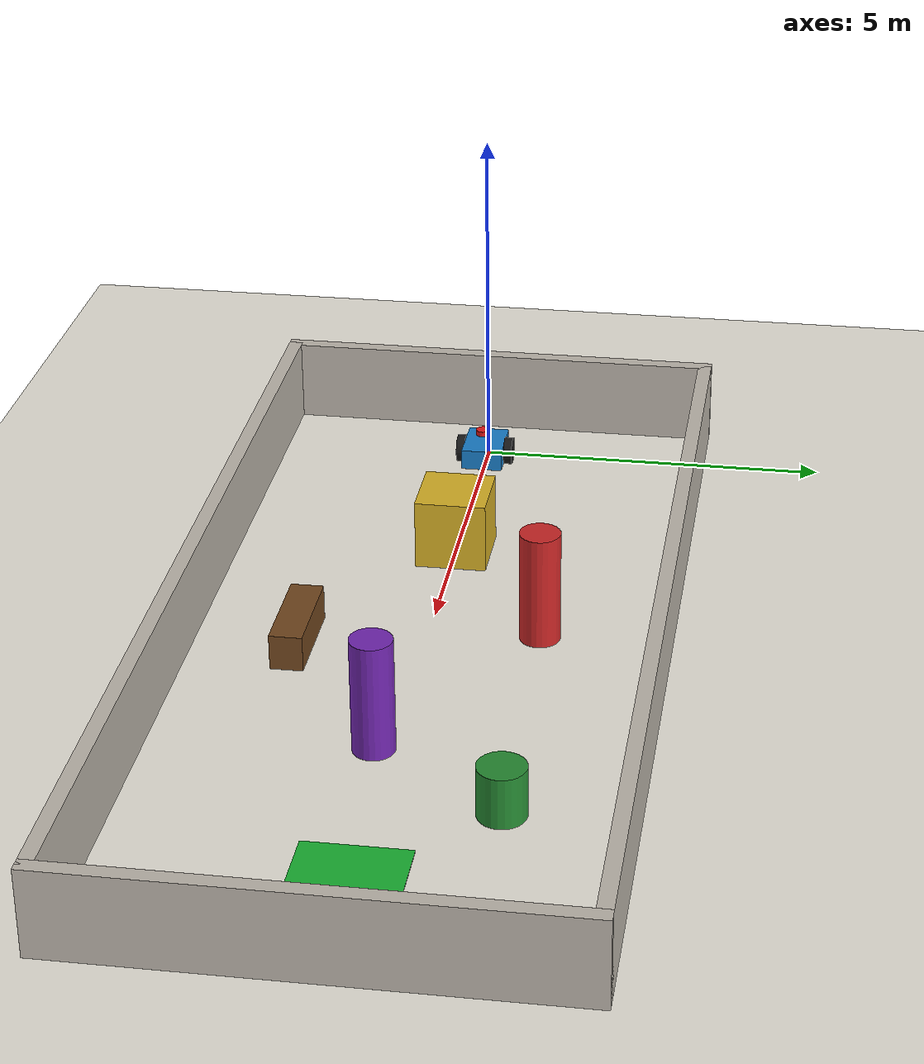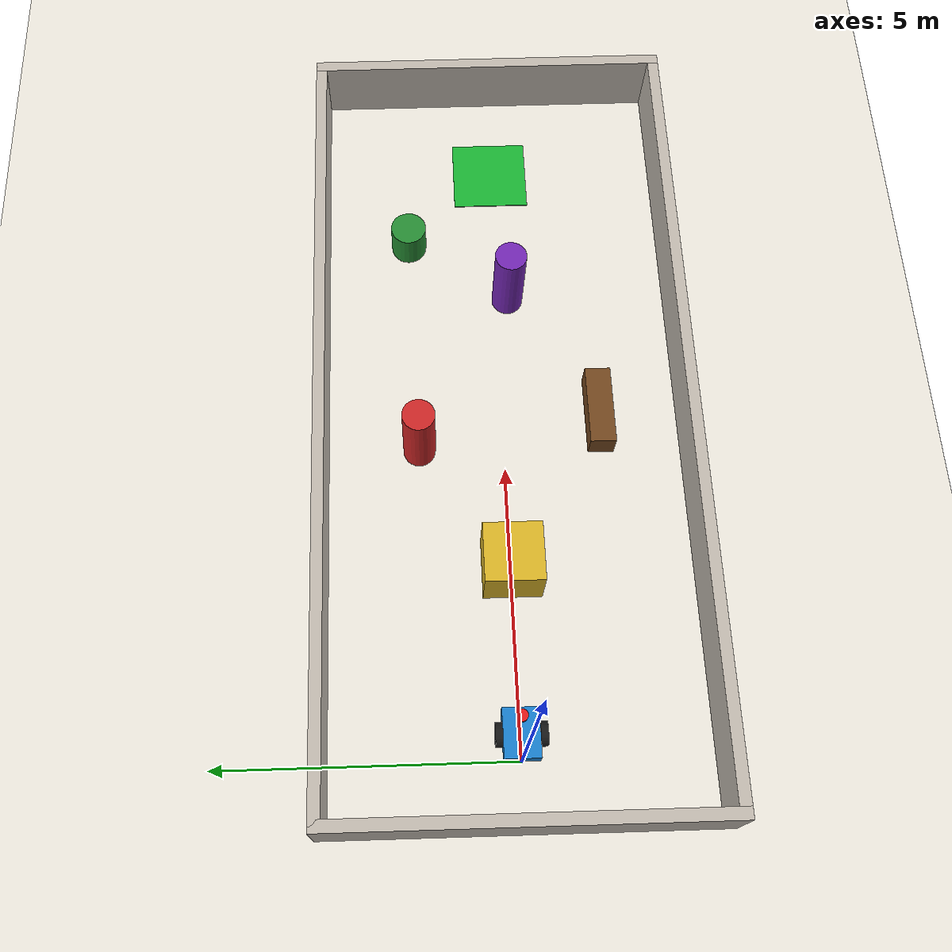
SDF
<?xml version="1.0" ?>
<sdf version="1.9">
  <world name="mall_world">
    <physics name="1ms" type="ignored">
      <max_step_size>0.001</max_step_size>
      <real_time_factor>1.0</real_time_factor>
    </physics>
    <plugin filename="gz-sim-physics-system" name="gz::sim::systems::Physics"/>
    <plugin filename="gz-sim-user-commands-system" name="gz::sim::systems::UserCommands"/>
    <plugin filename="gz-sim-scene-broadcaster-system" name="gz::sim::systems::SceneBroadcaster"/>
    <!-- ogre (not ogre2) is required for VirtualBox colour + GPU lidar -->
    <plugin filename="gz-sim-sensors-system" name="gz::sim::systems::Sensors">
      <render_engine>ogre</render_engine>
    </plugin>

    <scene>
      <ambient>1.0 1.0 1.0 1</ambient>
      <background>0.95 0.95 0.95 1</background>
      <shadows>false</shadows>
    </scene>
    <light type="directional" name="sun">
      <diffuse>1 1 1 1</diffuse>
      <specular>0.2 0.2 0.2 1</specular>
      <direction>-0.5 0.5 -1</direction>
    </light>

    <model name="ground_plane">
      <static>true</static>
      <link name="link">
        <collision name="collision"><geometry><plane><normal>0 0 1</normal><size>30 30</size></plane></geometry></collision>
        <visual name="visual">
          <geometry><plane><normal>0 0 1</normal><size>30 30</size></plane></geometry>
          <material><ambient>0.92 0.90 0.86 1</ambient><diffuse>0.92 0.90 0.86 1</diffuse></material>
        </visual>
      </link>
    </model>

    <!-- Mall side walls: keep the robot in the concourse -->
    <model name="mall_wall_south">
      <static>true</static><pose>6 -3.2 0.6 0 0 0</pose>
      <link name="link">
        <visual name="v"><geometry><box><size>14 0.2 1.2</size></box></geometry><material><ambient>0.75 0.72 0.68 1</ambient></material></visual>
        <collision name="c"><geometry><box><size>14 0.2 1.2</size></box></geometry></collision>
      </link>
    </model>
    <model name="mall_wall_north">
      <static>true</static><pose>6 3.2 0.6 0 0 0</pose>
      <link name="link">
        <visual name="v"><geometry><box><size>14 0.2 1.2</size></box></geometry><material><ambient>0.75 0.72 0.68 1</ambient></material></visual>
        <collision name="c"><geometry><box><size>14 0.2 1.2</size></box></geometry></collision>
      </link>
    </model>
    <model name="mall_wall_west">
      <static>true</static><pose>-1 0 0.6 0 0 0</pose>
      <link name="link">
        <visual name="v"><geometry><box><size>0.2 6.6 1.2</size></box></geometry><material><ambient>0.75 0.72 0.68 1</ambient></material></visual>
        <collision name="c"><geometry><box><size>0.2 6.6 1.2</size></box></geometry></collision>
      </link>
    </model>
    <model name="mall_wall_east">
      <static>true</static><pose>13 0 0.6 0 0 0</pose>
      <link name="link">
        <visual name="v"><geometry><box><size>0.2 6.6 1.2</size></box></geometry><material><ambient>0.75 0.72 0.68 1</ambient></material></visual>
        <collision name="c"><geometry><box><size>0.2 6.6 1.2</size></box></geometry></collision>
      </link>
    </model>

    <!-- Destination (visual only) -->
    <model name="shop_exit">
      <static>true</static><pose>11.2 0 0.01 0 0 0</pose>
      <link name="link">
        <visual name="v"><geometry><box><size>1.4 1.4 0.02</size></box></geometry>
          <material><ambient>0.1 0.7 0.2 1</ambient><diffuse>0.1 0.7 0.2 1</diffuse></material>
        </visual>
      </link>
    </model>

    <!-- Furniture / people with gaps wider than the robot (~0.6 m) -->
    <model name="kiosk">
      <static>true</static><pose>3.2 0.0 0.5 0 0 0</pose>
      <link name="link">
        <visual name="v"><geometry><box><size>1.0 1.0 1.0</size></box></geometry>
          <material><ambient>0.85 0.7 0.15 1</ambient><diffuse>0.85 0.7 0.15 1</diffuse></material>
        </visual>
        <collision name="c"><geometry><box><size>1.0 1.0 1.0</size></box></geometry></collision>
      </link>
    </model>
    <model name="bench">
      <static>true</static><pose>6.0 -1.7 0.25 0 0 0</pose>
      <link name="link">
        <visual name="v"><geometry><box><size>1.4 0.45 0.5</size></box></geometry>
          <material><ambient>0.45 0.28 0.12 1</ambient><diffuse>0.45 0.28 0.12 1</diffuse></material>
        </visual>
        <collision name="c"><geometry><box><size>1.4 0.45 0.5</size></box></geometry></collision>
      </link>
    </model>
    <model name="person_1">
      <static>true</static><pose>5.4 1.5 0.8 0 0 0</pose>
      <link name="link">
        <visual name="v"><geometry><cylinder><radius>0.28</radius><length>1.6</length></cylinder></geometry>
          <material><ambient>0.8 0.15 0.15 1</ambient><diffuse>0.8 0.15 0.15 1</diffuse></material>
        </visual>
        <collision name="c"><geometry><cylinder><radius>0.28</radius><length>1.6</length></cylinder></geometry></collision>
      </link>
    </model>
    <model name="person_2">
      <static>true</static><pose>8.4 -0.2 0.8 0 0 0</pose>
      <link name="link">
        <visual name="v"><geometry><cylinder><radius>0.28</radius><length>1.6</length></cylinder></geometry>
          <material><ambient>0.45 0.15 0.7 1</ambient><diffuse>0.45 0.15 0.7 1</diffuse></material>
        </visual>
        <collision name="c"><geometry><cylinder><radius>0.28</radius><length>1.6</length></cylinder></geometry></collision>
      </link>
    </model>
    <model name="planter">
      <static>true</static><pose>9.6 1.6 0.35 0 0 0</pose>
      <link name="link">
        <visual name="v"><geometry><cylinder><radius>0.32</radius><length>0.7</length></cylinder></geometry>
          <material><ambient>0.15 0.55 0.2 1</ambient><diffuse>0.15 0.55 0.2 1</diffuse></material>
        </visual>
        <collision name="c"><geometry><cylinder><radius>0.32</radius><length>0.7</length></cylinder></geometry></collision>
      </link>
    </model>

    <model name="service_robot">
      <pose>0.4 0 0.25 0 0 0</pose>
      <link name="base_link">
        <inertial><mass>1.0</mass><inertia><ixx>0.035</ixx><iyy>0.078</iyy><izz>0.095</izz></inertia></inertial>
        <collision name="c"><geometry><box><size>0.8 0.6 0.3</size></box></geometry></collision>
        <visual name="v"><geometry><box><size>0.8 0.6 0.3</size></box></geometry>
          <material><ambient>0.1 0.5 0.8 1</ambient><diffuse>0.1 0.5 0.8 1</diffuse></material>
        </visual>
      </link>
      <link name="left_wheel">
        <pose>0 0.36 0.0 0 0 0</pose>
        <inertial><mass>0.15</mass><inertia><ixx>0.003</ixx><iyy>0.003</iyy><izz>0.003</izz></inertia></inertial>
        <collision name="c"><pose>0 0 0 1.5708 0 0</pose><geometry><cylinder><radius>0.20</radius><length>0.12</length></cylinder></geometry>
          <surface><friction><ode><mu>10</mu><mu2>10</mu2></ode></friction></surface>
        </collision>
        <visual name="v"><pose>0 0 0 1.5708 0 0</pose><geometry><cylinder><radius>0.20</radius><length>0.12</length></cylinder></geometry>
          <material><ambient>0.1 0.1 0.1 1</ambient></material>
        </visual>
      </link>
      <link name="right_wheel">
        <pose>0 -0.36 0.0 0 0 0</pose>
        <inertial><mass>0.15</mass><inertia><ixx>0.003</ixx><iyy>0.003</iyy><izz>0.003</izz></inertia></inertial>
        <collision name="c"><pose>0 0 0 1.5708 0 0</pose><geometry><cylinder><radius>0.20</radius><length>0.12</length></cylinder></geometry>
          <surface><friction><ode><mu>10</mu><mu2>10</mu2></ode></friction></surface>
        </collision>
        <visual name="v"><pose>0 0 0 1.5708 0 0</pose><geometry><cylinder><radius>0.20</radius><length>0.12</length></cylinder></geometry>
          <material><ambient>0.1 0.1 0.1 1</ambient></material>
        </visual>
      </link>
      <link name="caster">
        <pose>-0.30 0 -0.12 0 0 0</pose>
        <inertial><mass>0.05</mass><inertia><ixx>0.0002</ixx><iyy>0.0002</iyy><izz>0.0002</izz></inertia></inertial>
        <collision name="c"><geometry><sphere><radius>0.08</radius></sphere></geometry>
          <surface><friction><ode><mu>0.01</mu><mu2>0.01</mu2></ode></friction></surface>
        </collision>
        <visual name="v"><geometry><sphere><radius>0.08</radius></sphere></geometry>
          <material><ambient>0.3 0.3 0.3 1</ambient></material>
        </visual>
      </link>
      <link name="lidar_link">
        <pose>0.22 0 0.40 0 0 0</pose>
        <inertial><mass>0.05</mass><inertia><ixx>0.0001</ixx><iyy>0.0001</iyy><izz>0.0001</izz></inertia></inertial>
        <visual name="lidar_visual"><geometry><cylinder><radius>0.10</radius><length>0.08</length></cylinder></geometry>
          <material><ambient>0.9 0.1 0.1 1</ambient></material>
        </visual>
        <sensor name="lidar" type="gpu_lidar">
          <always_on>true</always_on>
          <visualize>true</visualize>
          <update_rate>8</update_rate>
          <topic>/robot/scan</topic>
          <lidar>
            <scan>
              <horizontal>
                <samples>120</samples>
                <resolution>1</resolution>
                <min_angle>-3.14159</min_angle>
                <max_angle>3.14159</max_angle>
              </horizontal>
            </scan>
            <range><min>0.30</min><max>8.0</max><resolution>0.05</resolution></range>
          </lidar>
        </sensor>
      </link>
      <joint name="lwj" type="revolute"><parent>base_link</parent><child>left_wheel</child><axis><xyz>0 1 0</xyz></axis></joint>
      <joint name="rwj" type="revolute"><parent>base_link</parent><child>right_wheel</child><axis><xyz>0 1 0</xyz></axis></joint>
      <joint name="cj" type="fixed"><parent>base_link</parent><child>caster</child></joint>
      <joint name="lidar_joint" type="fixed"><parent>base_link</parent><child>lidar_link</child></joint>
      <plugin filename="gz-sim-diff-drive-system" name="gz::sim::systems::DiffDrive">
        <left_joint>lwj</left_joint>
        <right_joint>rwj</right_joint>
        <wheel_separation>0.72</wheel_separation>
        <wheel_radius>0.20</wheel_radius>
        <odom_publish_frequency>30</odom_publish_frequency>
        <odom_topic>/robot/odometry</odom_topic>
        <topic>/robot/cmd_vel</topic>
      </plugin>
    </model>
  </world>
</sdf>
